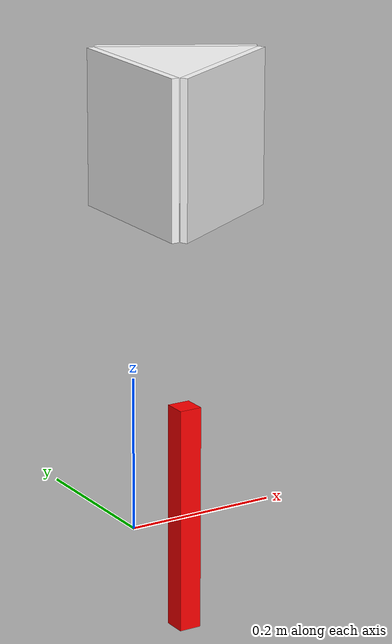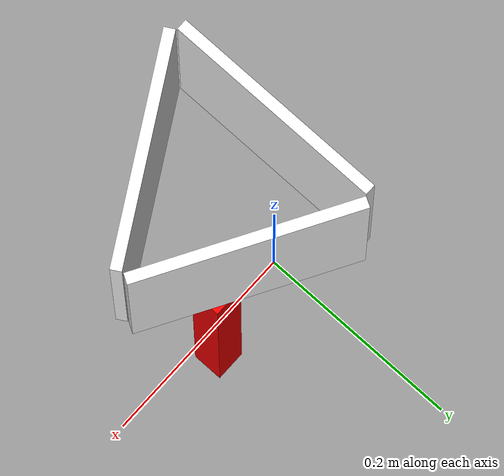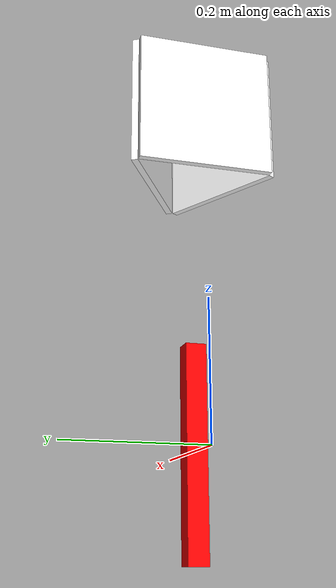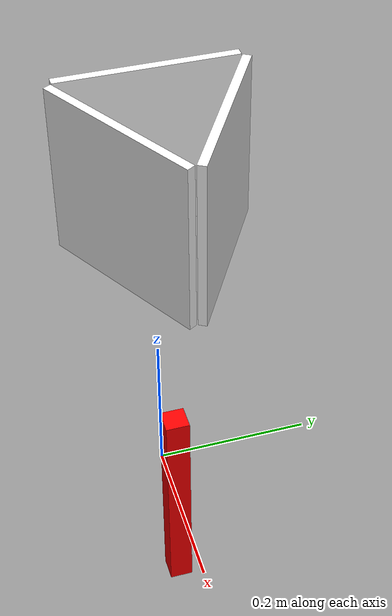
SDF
<?xml version='1.0'?>
<sdf version='1.6'>
  <model name='holder5'>

    <link name='front'>
      <inertial>
        <mass>1</mass>
        <inertia>
          <ixx>0.166667</ixx>
          <ixy>0</ixy>
          <ixz>0</ixz>
          <iyy>0.166667</iyy>
          <iyz>0</iyz>
          <izz>0.166667</izz>
        </inertia>
      </inertial>
      <pose frame=''>0 0 0.5 0 -0 0</pose>
      <visual name='visual'>
        <pose>0 0 0 1.5707 0 0</pose>
        <geometry>
          <mesh>
            <uri>model://artag5/meshes/artag5.dae</uri>
            <scale>1 1 1</scale>
          </mesh>
        </geometry>
         <material>
              <script>
                  <uri>model://artag5/materials/scripts</uri>
                  <uri>model://artag5/materials/textures</uri>
                  <name>artag5/Marker</name>
              </script>
       <ambient>1 1 1 1</ambient>
       <diffuse>1 1 1 1</diffuse>
       <specular>0 0 0 1</specular>
       <emissive>1 1 1 0</emissive>
       <shader type='vertex'>
         <normal_map>__default__</normal_map>
       </shader>
     </material>
        <transparency>0</transparency>
        <cast_shadows>1</cast_shadows>
      </visual>
      <collision name='collision'>
        <laser_retro>0</laser_retro>
        <max_contacts>10</max_contacts>
        <pose>0 0 0 1.5707 0 0</pose>
        <geometry>
          <mesh>
            <uri>model://artag5/meshes/artag5.dae</uri>
            <scale>1 1 1</scale>
          </mesh>
        </geometry>
        <surface>
          <friction>
            <ode>
              <mu>1</mu>
              <mu2>1</mu2>
              <fdir1>0 0 0</fdir1>
              <slip1>0</slip1>
              <slip2>0</slip2>
            </ode>
            <torsional>
              <coefficient>1</coefficient>
              <patch_radius>0</patch_radius>
              <surface_radius>0</surface_radius>
              <use_patch_radius>1</use_patch_radius>
              <ode>
                <slip>0</slip>
              </ode>
            </torsional>
          </friction>
          <bounce>
            <restitution_coefficient>0</restitution_coefficient>
            <threshold>1e+06</threshold>
          </bounce>
          <contact>
            <collide_without_contact>0</collide_without_contact>
            <collide_without_contact_bitmask>1</collide_without_contact_bitmask>
            <collide_bitmask>1</collide_bitmask>
            <ode>
              <soft_cfm>0</soft_cfm>
              <soft_erp>0.2</soft_erp>
              <kp>1e+13</kp>
              <kd>1</kd>
              <max_vel>0.01</max_vel>
              <min_depth>0</min_depth>
            </ode>
            <bullet>
              <split_impulse>1</split_impulse>
              <split_impulse_penetration_threshold>-0.01</split_impulse_penetration_threshold>
              <soft_cfm>0</soft_cfm>
              <soft_erp>0.2</soft_erp>
              <kp>1e+13</kp>
              <kd>1</kd>
            </bullet>
          </contact>
        </surface>
      </collision>
    </link>

    <link name='left'>
      <inertial>
        <mass>1</mass>
        <inertia>
          <ixx>0.166667</ixx>
          <ixy>0</ixy>
          <ixz>0</ixz>
          <iyy>0.166667</iyy>
          <iyz>0</iyz>
          <izz>0.166667</izz>
        </inertia>
      </inertial>
      <pose frame=''>0.095 0.055 0.5 3.1414 0 1.0471</pose>
      <visual name='visual'>
        <pose>0 0 0 1.5707 0 0</pose>
        <geometry>
          <mesh>
            <uri>model://artag5/meshes/artag5.dae</uri>
            <scale>1 1 1</scale>
          </mesh>
        </geometry>
         <material>
              <script>
                  <uri>model://artag5/materials/scripts</uri>
                  <uri>model://artag5/materials/textures</uri>
                  <name>artag5/Marker</name>
              </script>
       <ambient>1 1 1 1</ambient>
       <diffuse>1 1 1 1</diffuse>
       <specular>0 0 0 1</specular>
       <emissive>1 1 1 0</emissive>
       <shader type='vertex'>
         <normal_map>__default__</normal_map>
       </shader>
     </material>
        <transparency>0</transparency>
        <cast_shadows>1</cast_shadows>
      </visual>
      <collision name='collision'>
        <laser_retro>0</laser_retro>
        <max_contacts>10</max_contacts>
        <pose>0 0 0 1.5707 0 0</pose>
        <geometry>
          <mesh>
            <uri>model://artag5/meshes/artag5.dae</uri>
            <scale>1 1 1</scale>
          </mesh>
        </geometry>
        <surface>
          <friction>
            <ode>
              <mu>1</mu>
              <mu2>1</mu2>
              <fdir1>0 0 0</fdir1>
              <slip1>0</slip1>
              <slip2>0</slip2>
            </ode>
            <torsional>
              <coefficient>1</coefficient>
              <patch_radius>0</patch_radius>
              <surface_radius>0</surface_radius>
              <use_patch_radius>1</use_patch_radius>
              <ode>
                <slip>0</slip>
              </ode>
            </torsional>
          </friction>
          <bounce>
            <restitution_coefficient>0</restitution_coefficient>
            <threshold>1e+06</threshold>
          </bounce>
          <contact>
            <collide_without_contact>0</collide_without_contact>
            <collide_without_contact_bitmask>1</collide_without_contact_bitmask>
            <collide_bitmask>1</collide_bitmask>
            <ode>
              <soft_cfm>0</soft_cfm>
              <soft_erp>0.2</soft_erp>
              <kp>1e+13</kp>
              <kd>1</kd>
              <max_vel>0.01</max_vel>
              <min_depth>0</min_depth>
            </ode>
            <bullet>
              <split_impulse>1</split_impulse>
              <split_impulse_penetration_threshold>-0.01</split_impulse_penetration_threshold>
              <soft_cfm>0</soft_cfm>
              <soft_erp>0.2</soft_erp>
              <kp>1e+13</kp>
              <kd>1</kd>
            </bullet>
          </contact>
        </surface>
      </collision>
    </link>

<link name='right'>
      <inertial>
        <mass>1</mass>
        <inertia>
          <ixx>0.166667</ixx>
          <ixy>0</ixy>
          <ixz>0</ixz>
          <iyy>0.166667</iyy>
          <iyz>0</iyz>
          <izz>0.166667</izz>
        </inertia>
      </inertial>
      <pose frame=''>0.095 -0.055 0.5 3.1414 0 -1.0471</pose>
      <visual name='visual'>
        <pose>0 0 0 1.5707 0 0</pose>
        <geometry>
          <mesh>
            <uri>model://artag5/meshes/artag5.dae</uri>
            <scale>1 1 1</scale>
          </mesh>
        </geometry>
         <material>
              <script>
                  <uri>model://artag5/materials/scripts</uri>
                  <uri>model://artag5/materials/textures</uri>
                  <name>artag5/Marker</name>
              </script>
       <ambient>1 1 1 1</ambient>
       <diffuse>1 1 1 1</diffuse>
       <specular>0 0 0 1</specular>
       <emissive>1 1 1 0</emissive>
       <shader type='vertex'>
         <normal_map>__default__</normal_map>
       </shader>
     </material>
        <transparency>0</transparency>
        <cast_shadows>1</cast_shadows>
      </visual>
      <collision name='collision'>
        <laser_retro>0</laser_retro>
        <max_contacts>10</max_contacts>
        <pose>0 0 0 1.5707 0 0</pose>
        <geometry>
          <mesh>
            <uri>model://artag5/meshes/artag5.dae</uri>
            <scale>1 1 1</scale>
          </mesh>
        </geometry>
        <surface>
          <friction>
            <ode>
              <mu>1</mu>
              <mu2>1</mu2>
              <fdir1>0 0 0</fdir1>
              <slip1>0</slip1>
              <slip2>0</slip2>
            </ode>
            <torsional>
              <coefficient>1</coefficient>
              <patch_radius>0</patch_radius>
              <surface_radius>0</surface_radius>
              <use_patch_radius>1</use_patch_radius>
              <ode>
                <slip>0</slip>
              </ode>
            </torsional>
          </friction>
          <bounce>
            <restitution_coefficient>0</restitution_coefficient>
            <threshold>1e+06</threshold>
          </bounce>
          <contact>
            <collide_without_contact>0</collide_without_contact>
            <collide_without_contact_bitmask>1</collide_without_contact_bitmask>
            <collide_bitmask>1</collide_bitmask>
            <ode>
              <soft_cfm>0</soft_cfm>
              <soft_erp>0.2</soft_erp>
              <kp>1e+13</kp>
              <kd>1</kd>
              <max_vel>0.01</max_vel>
              <min_depth>0</min_depth>
            </ode>
            <bullet>
              <split_impulse>1</split_impulse>
              <split_impulse_penetration_threshold>-0.01</split_impulse_penetration_threshold>
              <soft_cfm>0</soft_cfm>
              <soft_erp>0.2</soft_erp>
              <kp>1e+13</kp>
              <kd>1</kd>
            </bullet>
          </contact>
        </surface>
      </collision>
    </link>

    <link name='base_link'>
      <inertial>
        <mass>100</mass>
        <inertia>
          <ixx>0.166667</ixx>
          <ixy>0</ixy>
          <ixz>0</ixz>
          <iyy>0.166667</iyy>
          <iyz>0</iyz>
          <izz>0.166667</izz>
        </inertia>
      </inertial>
      <pose frame=''>0.075 0 0 0 -0 0</pose>
      <visual name='visual'>
        <pose frame=''>0 0 0 0 -0 0</pose>
       <geometry>
          <box>
           <size>0.03 0.03 0.3</size>
          </box>
        </geometry>
      <material>
        <ambient>0.3607 0.2 0.0901 1</ambient>
        <diffuse>1 0 0 1</diffuse>
        <specular>0.1 0.1 0.1 1</specular>
        <emissive>0 0 0 0</emissive>
      </material>
        <transparency>0</transparency>
        <cast_shadows>1</cast_shadows>
      </visual>
      <collision name='collision'>
        <laser_retro>0</laser_retro>
        <max_contacts>10</max_contacts>
        <pose frame=''>0 0 0 0 -0 0</pose>
       <geometry>
          <box>
            <size>0.03 0.03 0.3</size>
          </box>
        </geometry>

        <surface>
          <friction>
            <ode>
              <mu>1</mu>
              <mu2>1</mu2>
              <fdir1>0 0 0</fdir1>
              <slip1>0</slip1>
              <slip2>0</slip2>
            </ode>
            <torsional>
              <coefficient>1</coefficient>
              <patch_radius>0</patch_radius>
              <surface_radius>0</surface_radius>
              <use_patch_radius>1</use_patch_radius>
              <ode>
                <slip>0</slip>
              </ode>
            </torsional>
          </friction>
          <bounce>
            <restitution_coefficient>0</restitution_coefficient>
            <threshold>1e+06</threshold>
          </bounce>
          <contact>
            <collide_without_contact>0</collide_without_contact>
            <collide_without_contact_bitmask>1</collide_without_contact_bitmask>
            <collide_bitmask>1</collide_bitmask>
            <ode>
              <soft_cfm>0</soft_cfm>
              <soft_erp>0.2</soft_erp>
              <kp>1e+13</kp>
              <kd>1</kd>
              <max_vel>0.01</max_vel>
              <min_depth>0</min_depth>
            </ode>
            <bullet>
              <split_impulse>1</split_impulse>
              <split_impulse_penetration_threshold>-0.01</split_impulse_penetration_threshold>
              <soft_cfm>0</soft_cfm>
              <soft_erp>0.2</soft_erp>
              <kp>1e+13</kp>
              <kd>1</kd>
            </bullet>
          </contact>
        </surface>
      </collision>
    </link>

    <joint type="fixed" name="front_joint">
      <pose>0 0 0 0 0 0</pose>
      <child>front</child>
      <parent>base_link</parent>
    </joint>

    <joint type="fixed" name="left_joint">
      <pose>0 0 0 0 0 0</pose>
      <child>left</child>
      <parent>base_link</parent>
    </joint>

    <joint type="fixed" name="right_joint">
      <pose>0 0 0 0 0 0</pose>
      <child>right</child>
      <parent>base_link</parent>
    </joint>

    <static>0</static>
    <allow_auto_disable>1</allow_auto_disable>
  </model>
</sdf>
